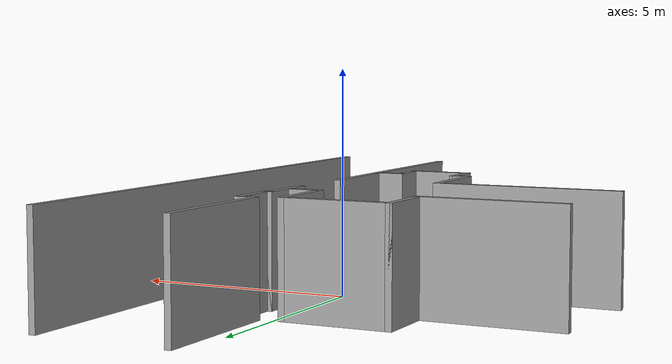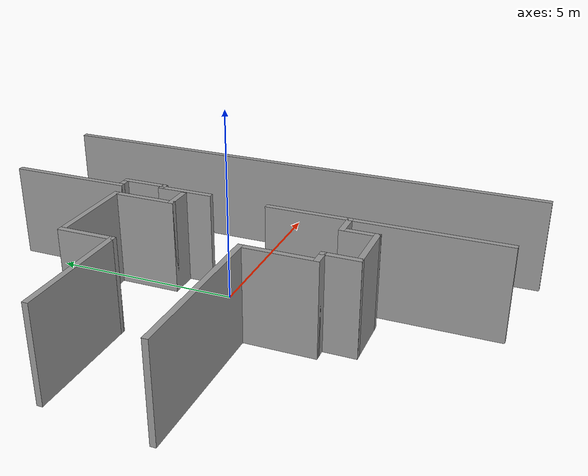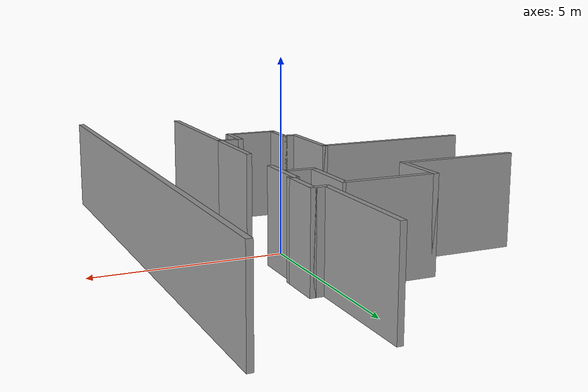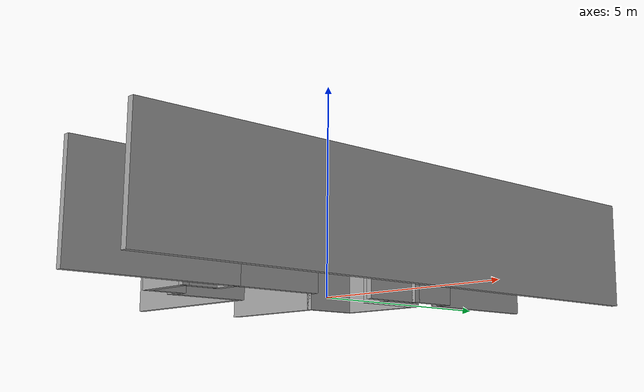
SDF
<?xml version='1.0'?>
<sdf version='1.6'>
  <model name='watkinslab'>
    <pose frame=''>-1.20867 -0.449319 0 0 -0 0</pose>
    <link name='Wall_1'>
      <collision name='Wall_1_Collision'>
        <geometry>
          <box>
            <size>13.75 0.15 2.5</size>
          </box>
        </geometry>
        <pose frame=''>0 0 1.25 0 -0 0</pose>
      </collision>
      <visual name='Wall_1_Visual'>
        <pose frame=''>0 0 1.25 0 -0 0</pose>
        <geometry>
          <box>
            <size>13.75 0.15 2.5</size>
          </box>
        </geometry>
        <material>
          <script>
            <uri>file://media/materials/scripts/gazebo.material</uri>
            <name>Gazebo/Grey</name>
          </script>
          <ambient>1 1 1 1</ambient>
        </material>
      </visual>
      <pose frame=''>4.65632 -0.012516 0 0 -0 1.5708</pose>
    </link>
    <link name='Wall_11'>
      <collision name='Wall_11_Collision'>
        <geometry>
          <box>
            <size>3.25 0.15 2.5</size>
          </box>
        </geometry>
        <pose frame=''>0 0 1.25 0 -0 0</pose>
      </collision>
      <visual name='Wall_11_Visual'>
        <pose frame=''>0 0 1.25 0 -0 0</pose>
        <geometry>
          <box>
            <size>3.25 0.15 2.5</size>
          </box>
        </geometry>
        <material>
          <script>
            <uri>file://media/materials/scripts/gazebo.material</uri>
            <name>Gazebo/Grey</name>
          </script>
          <ambient>1 1 1 1</ambient>
        </material>
      </visual>
      <pose frame=''>-2.86007 2.16892 0 0 -0 0</pose>
    </link>
    <link name='Wall_12'>
      <collision name='Wall_12_Collision'>
        <geometry>
          <box>
            <size>1.5 0.15 2.5</size>
          </box>
        </geometry>
        <pose frame=''>0 0 1.25 0 -0 0</pose>
      </collision>
      <visual name='Wall_12_Visual'>
        <pose frame=''>0 0 1.25 0 -0 0</pose>
        <geometry>
          <box>
            <size>1.5 0.15 2.5</size>
          </box>
        </geometry>
        <material>
          <script>
            <uri>file://media/materials/scripts/gazebo.material</uri>
            <name>Gazebo/Grey</name>
          </script>
          <ambient>1 1 1 1</ambient>
        </material>
      </visual>
      <pose frame=''>-1.31007 2.84392 0 0 -0 1.5708</pose>
    </link>
    <link name='Wall_13'>
      <collision name='Wall_13_Collision'>
        <geometry>
          <box>
            <size>2.5 0.15 2.5</size>
          </box>
        </geometry>
        <pose frame=''>0 0 1.25 0 -0 0</pose>
      </collision>
      <visual name='Wall_13_Visual'>
        <pose frame=''>0 0 1.25 0 -0 0</pose>
        <geometry>
          <box>
            <size>2.5 0.15 2.5</size>
          </box>
        </geometry>
        <material>
          <script>
            <uri>file://media/materials/scripts/gazebo.material</uri>
            <name>Gazebo/Grey</name>
          </script>
          <ambient>1 1 1 1</ambient>
        </material>
      </visual>
      <pose frame=''>-0.135065 3.51892 0 0 -0 0</pose>
    </link>
    <link name='Wall_14'>
      <collision name='Wall_14_Collision'>
        <geometry>
          <box>
            <size>1.75 0.15 2.5</size>
          </box>
        </geometry>
        <pose frame=''>0 0 1.25 0 -0 0</pose>
      </collision>
      <visual name='Wall_14_Visual'>
        <pose frame=''>0 0 1.25 0 -0 0</pose>
        <geometry>
          <box>
            <size>1.75 0.15 2.5</size>
          </box>
        </geometry>
        <material>
          <script>
            <uri>file://media/materials/scripts/gazebo.material</uri>
            <name>Gazebo/Grey</name>
          </script>
          <ambient>1 1 1 1</ambient>
        </material>
      </visual>
      <pose frame=''>1.03994 2.71892 0 0 0 -1.5708</pose>
    </link>
    <link name='Wall_16'>
      <collision name='Wall_16_Collision'>
        <geometry>
          <box>
            <size>0.75 0.15 2.5</size>
          </box>
        </geometry>
        <pose frame=''>0 0 1.25 0 -0 0</pose>
      </collision>
      <visual name='Wall_16_Visual'>
        <pose frame=''>0 0 1.25 0 -0 0</pose>
        <geometry>
          <box>
            <size>0.75 0.15 2.5</size>
          </box>
        </geometry>
        <material>
          <script>
            <uri>file://media/materials/scripts/gazebo.material</uri>
            <name>Gazebo/Grey</name>
          </script>
          <ambient>1 1 1 1</ambient>
        </material>
      </visual>
      <pose frame=''>1.33994 1.91892 0 0 -0 0</pose>
    </link>
    <link name='Wall_18'>
      <collision name='Wall_18_Collision'>
        <geometry>
          <box>
            <size>4.25 0.15 2.5</size>
          </box>
        </geometry>
        <pose frame=''>0 0 1.25 0 -0 0</pose>
      </collision>
      <visual name='Wall_18_Visual'>
        <pose frame=''>0 0 1.25 0 -0 0</pose>
        <geometry>
          <box>
            <size>4.25 0.15 2.5</size>
          </box>
        </geometry>
        <material>
          <script>
            <uri>file://media/materials/scripts/gazebo.material</uri>
            <name>Gazebo/Grey</name>
          </script>
          <ambient>1 1 1 1</ambient>
        </material>
      </visual>
      <pose frame=''>-2.60632 -0.68056 0 0 -0 0</pose>
    </link>
    <link name='Wall_19'>
      <collision name='Wall_19_Collision'>
        <geometry>
          <box>
            <size>2 0.15 2.5</size>
          </box>
        </geometry>
        <pose frame=''>0 0 1.25 0 -0 0</pose>
      </collision>
      <visual name='Wall_19_Visual'>
        <pose frame=''>0 0 1.25 0 -0 0</pose>
        <geometry>
          <box>
            <size>2 0.15 2.5</size>
          </box>
        </geometry>
        <material>
          <script>
            <uri>file://media/materials/scripts/gazebo.material</uri>
            <name>Gazebo/Grey</name>
          </script>
          <ambient>1 1 1 1</ambient>
        </material>
      </visual>
      <pose frame=''>-0.556316 -1.60556 0 0 0 -1.5708</pose>
    </link>
    <link name='Wall_20'>
      <collision name='Wall_20_Collision'>
        <geometry>
          <box>
            <size>0.5 0.15 2.5</size>
          </box>
        </geometry>
        <pose frame=''>0 0 1.25 0 -0 0</pose>
      </collision>
      <visual name='Wall_20_Visual'>
        <pose frame=''>0 0 1.25 0 -0 0</pose>
        <geometry>
          <box>
            <size>0.5 0.15 2.5</size>
          </box>
        </geometry>
        <material>
          <script>
            <uri>file://media/materials/scripts/gazebo.material</uri>
            <name>Gazebo/Grey</name>
          </script>
          <ambient>1 1 1 1</ambient>
        </material>
      </visual>
      <pose frame=''>-0.381316 -2.53056 0 0 -0 0</pose>
    </link>
    <link name='Wall_21'>
      <collision name='Wall_21_Collision'>
        <geometry>
          <box>
            <size>1 0.15 2.5</size>
          </box>
        </geometry>
        <pose frame=''>0 0 1.25 0 -0 0</pose>
      </collision>
      <visual name='Wall_21_Visual'>
        <pose frame=''>0 0 1.25 0 -0 0</pose>
        <geometry>
          <box>
            <size>1 0.15 2.5</size>
          </box>
        </geometry>
        <material>
          <script>
            <uri>file://media/materials/scripts/gazebo.material</uri>
            <name>Gazebo/Grey</name>
          </script>
          <ambient>1 1 1 1</ambient>
        </material>
      </visual>
      <pose frame=''>-0.206316 -2.95556 0 0 0 -1.5708</pose>
    </link>
    <link name='Wall_22'>
      <collision name='Wall_22_Collision'>
        <geometry>
          <box>
            <size>1.5 0.15 2.5</size>
          </box>
        </geometry>
        <pose frame=''>0 0 1.25 0 -0 0</pose>
      </collision>
      <visual name='Wall_22_Visual'>
        <pose frame=''>0 0 1.25 0 -0 0</pose>
        <geometry>
          <box>
            <size>1.5 0.15 2.5</size>
          </box>
        </geometry>
        <material>
          <script>
            <uri>file://media/materials/scripts/gazebo.material</uri>
            <name>Gazebo/Grey</name>
          </script>
          <ambient>1 1 1 1</ambient>
        </material>
      </visual>
      <pose frame=''>0.468684 -3.38056 0 0 -0 0</pose>
    </link>
    <link name='Wall_23'>
      <collision name='Wall_23_Collision'>
        <geometry>
          <box>
            <size>1 0.15 2.5</size>
          </box>
        </geometry>
        <pose frame=''>0 0 1.25 0 -0 0</pose>
      </collision>
      <visual name='Wall_23_Visual'>
        <pose frame=''>0 0 1.25 0 -0 0</pose>
        <geometry>
          <box>
            <size>1 0.15 2.5</size>
          </box>
        </geometry>
        <material>
          <script>
            <uri>file://media/materials/scripts/gazebo.material</uri>
            <name>Gazebo/Grey</name>
          </script>
          <ambient>1 1 1 1</ambient>
        </material>
      </visual>
      <pose frame=''>1.14368 -2.95556 0 0 -0 1.5708</pose>
    </link>
    <link name='Wall_24'>
      <collision name='Wall_24_Collision'>
        <geometry>
          <box>
            <size>0.75 0.15 2.5</size>
          </box>
        </geometry>
        <pose frame=''>0 0 1.25 0 -0 0</pose>
      </collision>
      <visual name='Wall_24_Visual'>
        <pose frame=''>0 0 1.25 0 -0 0</pose>
        <geometry>
          <box>
            <size>0.75 0.15 2.5</size>
          </box>
        </geometry>
        <material>
          <script>
            <uri>file://media/materials/scripts/gazebo.material</uri>
            <name>Gazebo/Grey</name>
          </script>
          <ambient>1 1 1 1</ambient>
        </material>
      </visual>
      <pose frame=''>1.44368 -2.53056 0 0 -0 0</pose>
    </link>
    <link name='Wall_26'>
      <collision name='Wall_26_Collision'>
        <geometry>
          <box>
            <size>0.25 0.15 2.5</size>
          </box>
        </geometry>
        <pose frame=''>0 0 1.25 0 -0 0</pose>
      </collision>
      <visual name='Wall_26_Visual'>
        <pose frame=''>0 0 1.25 0 -0 0</pose>
        <geometry>
          <box>
            <size>0.25 0.15 2.5</size>
          </box>
        </geometry>
        <material>
          <script>
            <uri>file://media/materials/scripts/gazebo.material</uri>
            <name>Gazebo/Grey</name>
          </script>
          <ambient>1 1 1 1</ambient>
        </material>
      </visual>
      <pose frame=''>1.87033 2.61252 0 0 -0 3.14159</pose>
    </link>
    <link name='Wall_27'>
      <collision name='Wall_27_Collision'>
        <geometry>
          <box>
            <size>1.5 0.15 2.5</size>
          </box>
        </geometry>
        <pose frame=''>0 0 1.25 0 -0 0</pose>
      </collision>
      <visual name='Wall_27_Visual'>
        <pose frame=''>0 0 1.25 0 -0 0</pose>
        <geometry>
          <box>
            <size>1.5 0.15 2.5</size>
          </box>
        </geometry>
        <material>
          <script>
            <uri>file://media/materials/scripts/gazebo.material</uri>
            <name>Gazebo/Grey</name>
          </script>
          <ambient>1 1 1 1</ambient>
        </material>
      </visual>
      <pose frame=''>1.82032 1.93752 0 0 0 -1.5708</pose>
    </link>
    <link name='Wall_29'>
      <collision name='Wall_29_Collision'>
        <geometry>
          <box>
            <size>2.25 0.15 2.5</size>
          </box>
        </geometry>
        <pose frame=''>0 0 1.25 0 -0 0</pose>
      </collision>
      <visual name='Wall_29_Visual'>
        <pose frame=''>0 0 1.25 0 -0 0</pose>
        <geometry>
          <box>
            <size>2.25 0.15 2.5</size>
          </box>
        </geometry>
        <material>
          <script>
            <uri>file://media/materials/scripts/gazebo.material</uri>
            <name>Gazebo/Grey</name>
          </script>
          <ambient>1 1 1 1</ambient>
        </material>
      </visual>
      <pose frame=''>1.74368 -1.48056 0 0 -0 1.5708</pose>
    </link>
    <link name='Wall_31'>
      <collision name='Wall_31_Collision'>
        <geometry>
          <box>
            <size>4 0.15 2.5</size>
          </box>
        </geometry>
        <pose frame=''>0 0 1.25 0 -0 0</pose>
      </collision>
      <visual name='Wall_31_Visual'>
        <pose frame=''>0 0 1.25 0 -0 0</pose>
        <geometry>
          <box>
            <size>4 0.15 2.5</size>
          </box>
        </geometry>
        <material>
          <script>
            <uri>file://media/materials/scripts/gazebo.material</uri>
            <name>Gazebo/Grey</name>
          </script>
          <ambient>1 1 1 1</ambient>
        </material>
      </visual>
      <pose frame=''>1.74368 -4.45556 0 0 0 -1.5708</pose>
    </link>
    <link name='Wall_5'>
      <collision name='Wall_5_Collision'>
        <geometry>
          <box>
            <size>3.25 0.15 2.5</size>
          </box>
        </geometry>
        <pose frame=''>0 0 1.25 0 -0 0</pose>
      </collision>
      <visual name='Wall_5_Visual'>
        <pose frame=''>0 0 1.25 0 -0 0</pose>
        <geometry>
          <box>
            <size>3.25 0.15 2.5</size>
          </box>
        </geometry>
        <material>
          <script>
            <uri>file://media/materials/scripts/gazebo.material</uri>
            <name>Gazebo/Grey</name>
          </script>
          <ambient>1 1 1 1</ambient>
        </material>
      </visual>
      <pose frame=''>1.57032 5.26252 0 0 0 -1.5708</pose>
    </link>
    <link name='Wall_6'>
      <collision name='Wall_6_Collision'>
        <geometry>
          <box>
            <size>0.5 0.15 2.5</size>
          </box>
        </geometry>
        <pose frame=''>0 0 1.25 0 -0 0</pose>
      </collision>
      <visual name='Wall_6_Visual'>
        <pose frame=''>0 0 1.25 0 -0 0</pose>
        <geometry>
          <box>
            <size>0.5 0.15 2.5</size>
          </box>
        </geometry>
        <material>
          <script>
            <uri>file://media/materials/scripts/gazebo.material</uri>
            <name>Gazebo/Grey</name>
          </script>
          <ambient>1 1 1 1</ambient>
        </material>
      </visual>
      <pose frame=''>1.74533 3.71252 0 0 -0 0</pose>
    </link>
    <link name='Wall_7'>
      <collision name='Wall_7_Collision'>
        <geometry>
          <box>
            <size>1.25 0.15 2.5</size>
          </box>
        </geometry>
        <pose frame=''>0 0 1.25 0 -0 0</pose>
      </collision>
      <visual name='Wall_7_Visual'>
        <pose frame=''>0 0 1.25 0 -0 0</pose>
        <geometry>
          <box>
            <size>1.25 0.15 2.5</size>
          </box>
        </geometry>
        <material>
          <script>
            <uri>file://media/materials/scripts/gazebo.material</uri>
            <name>Gazebo/Grey</name>
          </script>
          <ambient>1 1 1 1</ambient>
        </material>
      </visual>
      <pose frame=''>1.92033 3.16252 0 0 0 -1.5708</pose>
    </link>
    <static>1</static>
  </model>
</sdf>
